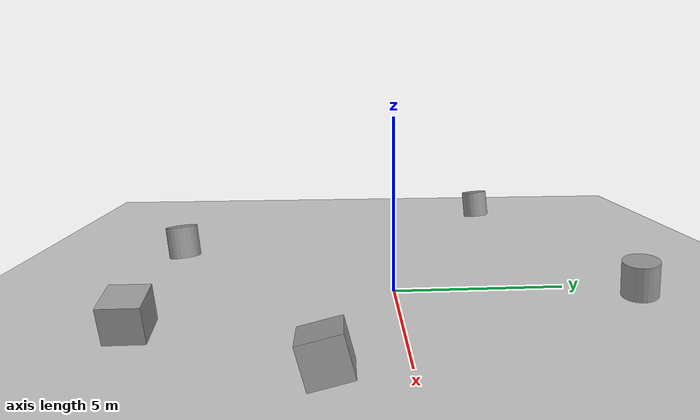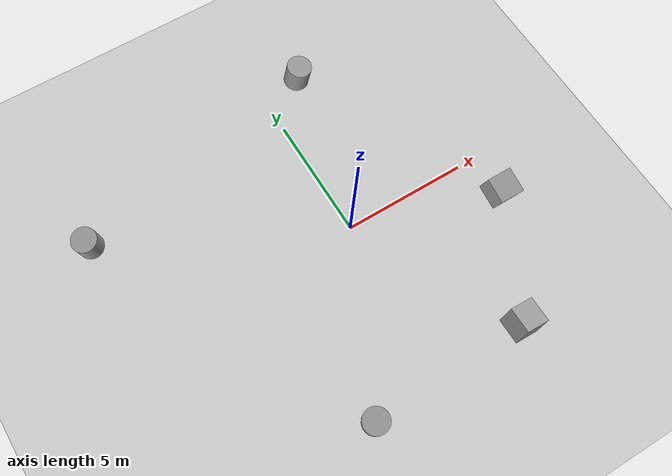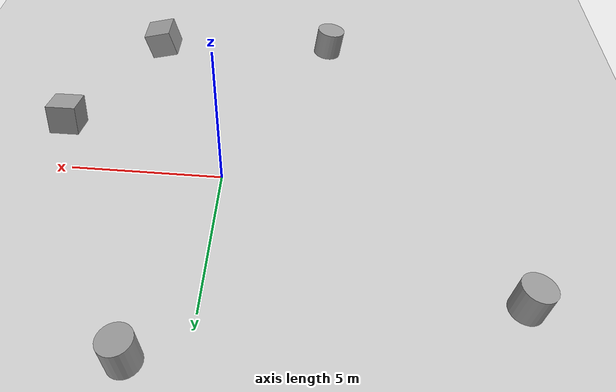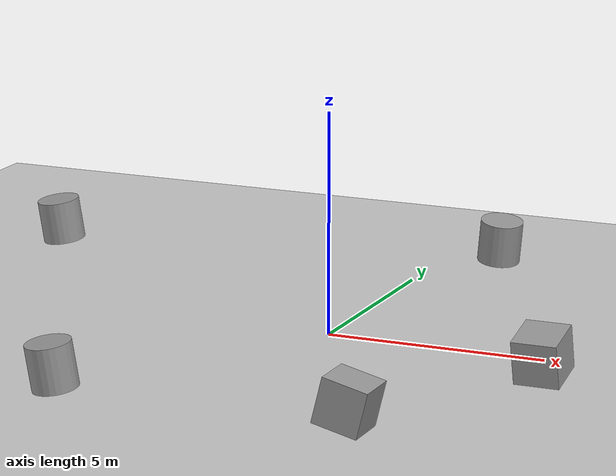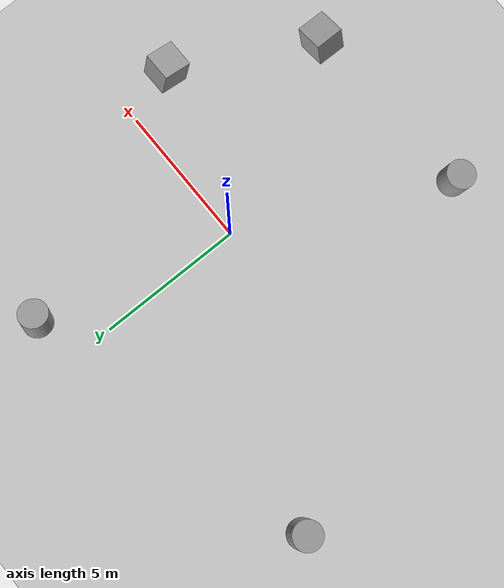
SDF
<sdf version="1.7">
 <world name="default">
  <light name="sun" type="directional">
   <pose>0 0 10 0 -0 0</pose>
   <diffuse>0.8 0.8 0.8 1</diffuse>
   <specular>0.2 0.2 0.2 1</specular>
   <attenuation>
    <range>1000</range>
    <constant>0.9</constant>
    <linear>0.01</linear>
    <quadratic>0.001</quadratic>
   </attenuation>
   <direction>-0.5 0.1 -0.9</direction>
   <spot><inner_angle>0</inner_angle><outer_angle>0</outer_angle><falloff>0</falloff></spot>
  </light>
  <model name="ground_plane">
   <static>1</static>
   <link name="link">
    <collision name="collision">
     <geometry><plane><normal>0 0 1</normal><size>100 100</size></plane></geometry>
     <surface>
      <contact><collide_bitmask>65535</collide_bitmask></contact>
      <friction><ode><mu>100</mu><mu2>50</mu2></ode></friction>
     </surface>
    </collision>
    <visual name="visual">
     <cast_shadows>0</cast_shadows>
     <geometry><plane><normal>0 0 1</normal><size>100 100</size></plane></geometry>
     <material>
      <script><uri>file://media/materials/scripts/gazebo.material</uri><name>Gazebo/Grey</name></script>
     </material>
    </visual>
   </link>
  </model>
  <gravity>0 0 -9.8</gravity>
  <magnetic_field>6e-06 2.3e-05 -4.2e-05</magnetic_field>
  <atmosphere type="adiabatic"/>
  <physics type="ode">
   <max_step_size>0.001</max_step_size>
   <real_time_factor>1</real_time_factor>
   <real_time_update_rate>1000</real_time_update_rate>
  </physics>
  <scene><ambient>0.4 0.4 0.4 1</ambient><background>0.7 0.7 0.7 1</background><shadows>1</shadows></scene>
  <spherical_coordinates>
   <surface_model>EARTH_WGS84</surface_model>
   <latitude_deg>0</latitude_deg>
   <longitude_deg>0</longitude_deg>
   <elevation>0</elevation>
   <heading_deg>0</heading_deg>
  </spherical_coordinates>
  <model name="unit_cylinder">
   <pose>1.60383 6.56847 0.753088 0.098743 0.119065 0.00589</pose>
   <link name="link">
    <inertial>
     <mass>1</mass>
     <inertia><ixx>0.145833</ixx><ixy>0</ixy><ixz>0</ixz><iyy>0.145833</iyy><iyz>0</iyz><izz>0.125</izz></inertia>
    </inertial>
    <collision name="collision">
     <geometry><cylinder><radius>0.5</radius><length>1</length></cylinder></geometry>
    </collision>
    <visual name="visual">
     <geometry><cylinder><radius>0.5</radius><length>1</length></cylinder></geometry>
     <material>
      <script><name>Gazebo/Grey</name><uri>file://media/materials/scripts/gazebo.material</uri></script>
     </material>
    </visual>
   </link>
  </model>
  <model name="unit_cylinder_0">
   <pose>-8.8363 4.23858 0.762914 0.09241 -0.116427 -0.005389</pose>
   <link name="link">
    <inertial>
     <mass>1</mass>
     <inertia><ixx>0.145833</ixx><ixy>0</ixy><ixz>0</ixz><iyy>0.145833</iyy><iyz>0</iyz><izz>0.125</izz></inertia>
    </inertial>
    <collision name="collision">
     <geometry><cylinder><radius>0.5</radius><length>1</length></cylinder></geometry>
    </collision>
    <visual name="visual">
     <geometry><cylinder><radius>0.5</radius><length>1</length></cylinder></geometry>
     <material>
      <script><name>Gazebo/Grey</name><uri>file://media/materials/scripts/gazebo.material</uri></script>
     </material>
    </visual>
   </link>
  </model>
  <model name="unit_cylinder_1">
   <pose>-3.30656 -6.71575 0.753361 0.098865 -0.118933 -0.005891</pose>
   <link name="link">
    <inertial>
     <mass>1</mass>
     <inertia><ixx>0.145833</ixx><ixy>0</ixy><ixz>0</ixz><iyy>0.145833</iyy><iyz>0</iyz><izz>0.125</izz></inertia>
    </inertial>
    <collision name="collision">
     <geometry><cylinder><radius>0.5</radius><length>1</length></cylinder></geometry>
    </collision>
    <visual name="visual">
     <geometry><cylinder><radius>0.5</radius><length>1</length></cylinder></geometry>
     <material>
      <script><name>Gazebo/Grey</name><uri>file://media/materials/scripts/gazebo.material</uri></script>
     </material>
    </visual>
   </link>
  </model>
  <model name="unit_box">
   <pose>3.1591 -6.44776 0.70155 0.000127 0.241848 -1.3e-05</pose>
   <link name="link">
    <inertial>
     <mass>1</mass>
     <inertia>
      <ixx>0.166667</ixx>
      <ixy>0</ixy>
      <ixz>0</ixz>
      <iyy>0.166667</iyy>
      <iyz>0</iyz>
      <izz>0.166667</izz>
     </inertia>
    </inertial>
    <collision name="collision"><geometry><box><size>1 1 1</size></box></geometry></collision>
    <visual name="visual">
     <geometry><box><size>1 1 1</size></box></geometry>
     <material>
      <script><name>Gazebo/Grey</name><uri>file://media/materials/scripts/gazebo.material</uri></script>
     </material>
    </visual>
   </link>
  </model>
  <model name="unit_box_0">
   <pose>5.58255 -1.82489 0.701533 0.241828 -9.9e-05 -3.8e-05</pose>
   <link name="link">
    <inertial>
     <mass>1</mass>
     <inertia>
      <ixx>0.166667</ixx>
      <ixy>0</ixy>
      <ixz>0</ixz>
      <iyy>0.166667</iyy>
      <iyz>0</iyz>
      <izz>0.166667</izz>
     </inertia>
    </inertial>
    <collision name="collision"><geometry><box><size>1 1 1</size></box></geometry></collision>
    <visual name="visual">
     <geometry><box><size>1 1 1</size></box></geometry>
     <material>
      <script><name>Gazebo/Grey</name><uri>file://media/materials/scripts/gazebo.material</uri></script>
     </material>
    </visual>
   </link>
  </model>
 </world>
</sdf>
